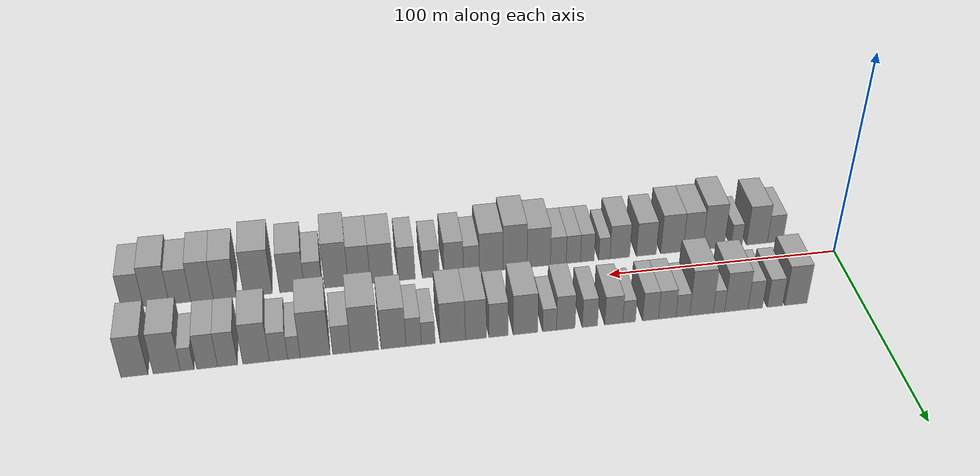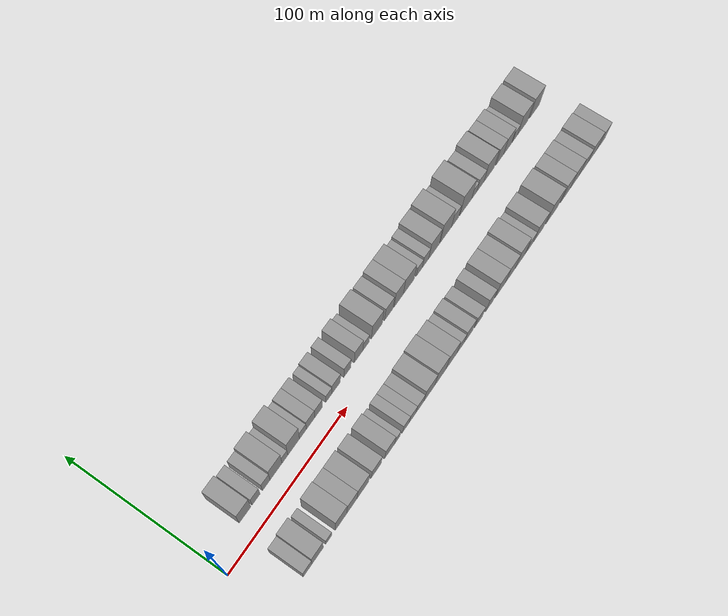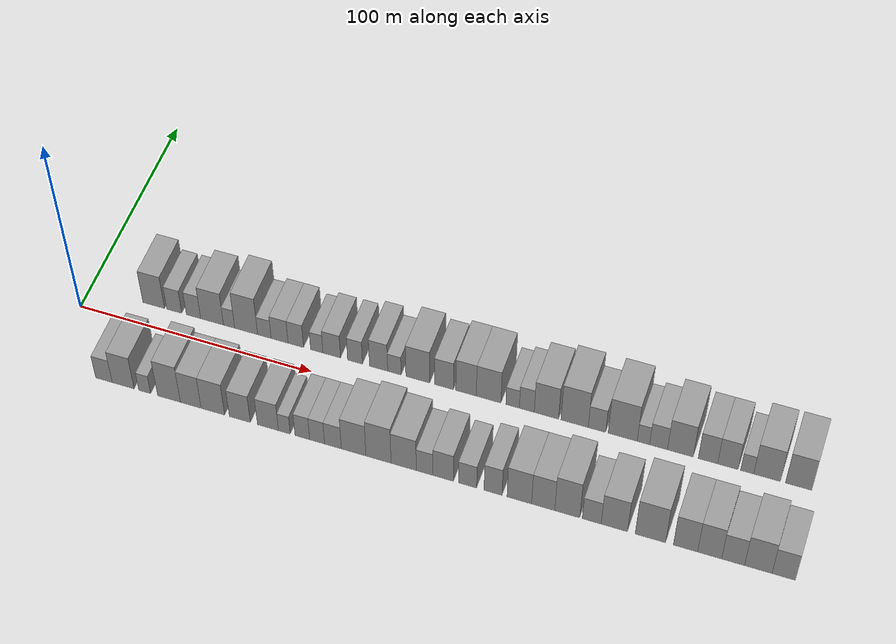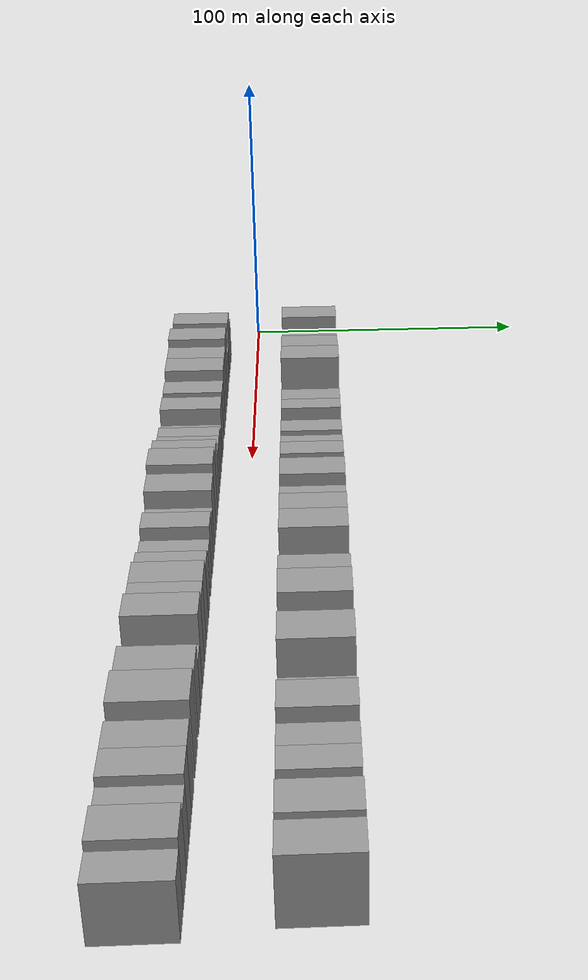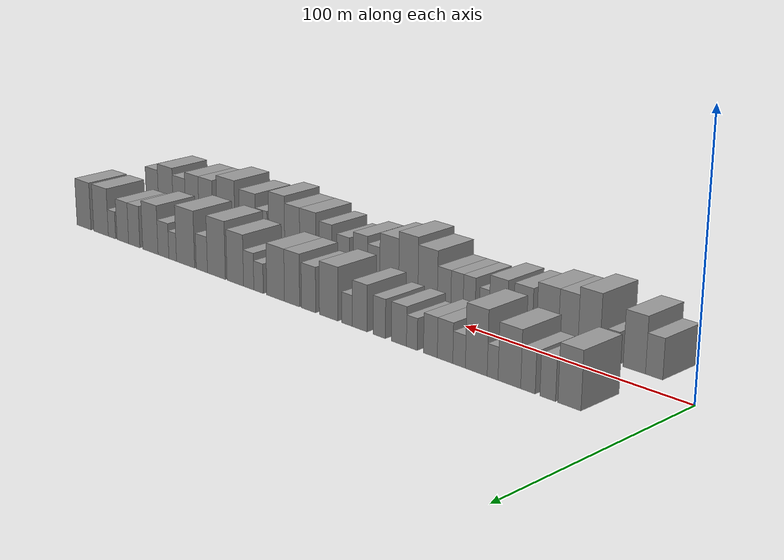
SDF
<sdf version="1.6">
 <world name="default">
  <scene>
   <sky><clouds><speed>12</speed></clouds></sky>
   <ambient>0.4 0.4 0.4 1</ambient>
   <background>0.7 0.7 0.7 1</background>
   <shadows>1</shadows>
  </scene>
  <gravity>0 0 -9.8066</gravity>
  <magnetic_field>6e-06 2.3e-05 -4.2e-05</magnetic_field>
  <physics default="0" name="default_physics" type="ode">
   <ode>
    <solver>
     <type>quick</type>
     <iters>10</iters>
     <sor>1.0</sor>
     <use_dynamic_moi_rescaling>0</use_dynamic_moi_rescaling>
    </solver>
    <constraints>
     <cfm>0</cfm>
     <erp>0.2</erp>
     <contact_max_correcting_vel>100</contact_max_correcting_vel>
     <contact_surface_layer>0.001</contact_surface_layer>
    </constraints>
   </ode>
   <max_step_size>0.004</max_step_size>
   <real_time_factor>1</real_time_factor>
   <real_time_update_rate>250</real_time_update_rate>
  </physics>
  <light name="sun" type="directional">
   <pose>0 0 10 0 0 0</pose>
   <diffuse>0.8 0.8 0.8 1</diffuse>
   <specular>0.2 0.2 0.2 1</specular>
   <attenuation>
    <range>1000</range>
    <constant>0.9</constant>
    <linear>0.01</linear>
    <quadratic>0.001</quadratic>
   </attenuation>
   <direction>-0.5 0.1 -0.9</direction>
  </light>
  <model name="building_1">
   <static>1</static>
   <pose>27.7572 20.0000 0 0.000000 0.000000 1.570796</pose>
   <link name="link">
    <pose>0 0 10.50 0 0 0</pose>
    <collision name="collision"><geometry><box><size>20.0000 9.5144 21.0000</size></box></geometry></collision>
    <visual name="visual">
     <cast_shadows>0</cast_shadows>
     <geometry><box><size>20.0000 9.5144 21.0000</size></box></geometry>
     <material>
      <script>
       <uri>model://grey_wall/materials/scripts</uri>
       <uri>model://grey_wall/materials/textures</uri>
       <name>vrc/grey_wall</name>
      </script>
     </material>
    </visual>
   </link>
  </model>
  <model name="building_2">
   <static>1</static>
   <pose>36.8097 20.0000 0 0.000000 0.000000 1.570796</pose>
   <link name="link">
    <pose>0 0 7.50 0 0 0</pose>
    <collision name="collision"><geometry><box><size>20.0000 6.5906 15.0000</size></box></geometry></collision>
    <visual name="visual">
     <cast_shadows>0</cast_shadows>
     <geometry><box><size>20.0000 6.5906 15.0000</size></box></geometry>
     <material>
      <script>
       <uri>model://grey_wall/materials/scripts</uri>
       <uri>model://grey_wall/materials/textures</uri>
       <name>vrc/grey_wall</name>
      </script>
     </material>
    </visual>
   </link>
  </model>
  <model name="building_3">
   <static>1</static>
   <pose>45.2321 20.0000 0 0.000000 0.000000 1.570796</pose>
   <link name="link">
    <pose>0 0 7.50 0 0 0</pose>
    <collision name="collision"><geometry><box><size>20.0000 6.2540 15.0000</size></box></geometry></collision>
    <visual name="visual">
     <cast_shadows>0</cast_shadows>
     <geometry><box><size>20.0000 6.2540 15.0000</size></box></geometry>
     <material>
      <script>
       <uri>model://grey_wall/materials/scripts</uri>
       <uri>model://grey_wall/materials/textures</uri>
       <name>vrc/grey_wall</name>
      </script>
     </material>
    </visual>
   </link>
  </model>
  <model name="building_4">
   <static>1</static>
   <pose>53.3386 20.0000 0 0.000000 0.000000 1.570796</pose>
   <link name="link">
    <pose>0 0 10.50 0 0 0</pose>
    <collision name="collision"><geometry><box><size>20.0000 9.9590 21.0000</size></box></geometry></collision>
    <visual name="visual">
     <cast_shadows>0</cast_shadows>
     <geometry><box><size>20.0000 9.9590 21.0000</size></box></geometry>
     <material>
      <script>
       <uri>model://grey_wall/materials/scripts</uri>
       <uri>model://grey_wall/materials/textures</uri>
       <name>vrc/grey_wall</name>
      </script>
     </material>
    </visual>
   </link>
  </model>
  <model name="building_5">
   <static>1</static>
   <pose>60.7465 20.0000 0 0.000000 0.000000 1.570796</pose>
   <link name="link">
    <pose>0 0 6.00 0 0 0</pose>
    <collision name="collision"><geometry><box><size>20.0000 4.8570 12.0000</size></box></geometry></collision>
    <visual name="visual">
     <cast_shadows>0</cast_shadows>
     <geometry><box><size>20.0000 4.8570 12.0000</size></box></geometry>
     <material>
      <script>
       <uri>model://grey_wall/materials/scripts</uri>
       <uri>model://grey_wall/materials/textures</uri>
       <name>vrc/grey_wall</name>
      </script>
     </material>
    </visual>
   </link>
  </model>
  <model name="building_6">
   <static>1</static>
   <pose>68.1376 20.0000 0 0.000000 0.000000 1.570796</pose>
   <link name="link">
    <pose>0 0 12.00 0 0 0</pose>
    <collision name="collision"><geometry><box><size>20.0000 9.9251 24.0000</size></box></geometry></collision>
    <visual name="visual">
     <cast_shadows>0</cast_shadows>
     <geometry><box><size>20.0000 9.9251 24.0000</size></box></geometry>
     <material>
      <script>
       <uri>model://grey_wall/materials/scripts</uri>
       <uri>model://grey_wall/materials/textures</uri>
       <name>vrc/grey_wall</name>
      </script>
     </material>
    </visual>
   </link>
  </model>
  <model name="building_7">
   <static>1</static>
   <pose>76.0149 20.0000 0 0.000000 0.000000 1.570796</pose>
   <link name="link">
    <pose>0 0 6.00 0 0 0</pose>
    <collision name="collision"><geometry><box><size>20.0000 5.8294 12.0000</size></box></geometry></collision>
    <visual name="visual">
     <cast_shadows>0</cast_shadows>
     <geometry><box><size>20.0000 5.8294 12.0000</size></box></geometry>
     <material>
      <script>
       <uri>model://grey_wall/materials/scripts</uri>
       <uri>model://grey_wall/materials/textures</uri>
       <name>vrc/grey_wall</name>
      </script>
     </material>
    </visual>
   </link>
  </model>
  <model name="building_8">
   <static>1</static>
   <pose>82.5758 20.0000 0 0.000000 0.000000 1.570796</pose>
   <link name="link">
    <pose>0 0 7.50 0 0 0</pose>
    <collision name="collision"><geometry><box><size>20.0000 7.2925 15.0000</size></box></geometry></collision>
    <visual name="visual">
     <cast_shadows>0</cast_shadows>
     <geometry><box><size>20.0000 7.2925 15.0000</size></box></geometry>
     <material>
      <script>
       <uri>model://grey_wall/materials/scripts</uri>
       <uri>model://grey_wall/materials/textures</uri>
       <name>vrc/grey_wall</name>
      </script>
     </material>
    </visual>
   </link>
  </model>
  <model name="building_9">
   <static>1</static>
   <pose>89.5353 20.0000 0 0.000000 0.000000 1.570796</pose>
   <link name="link">
    <pose>0 0 7.50 0 0 0</pose>
    <collision name="collision"><geometry><box><size>20.0000 6.6265 15.0000</size></box></geometry></collision>
    <visual name="visual">
     <cast_shadows>0</cast_shadows>
     <geometry><box><size>20.0000 6.6265 15.0000</size></box></geometry>
     <material>
      <script>
       <uri>model://grey_wall/materials/scripts</uri>
       <uri>model://grey_wall/materials/textures</uri>
       <name>vrc/grey_wall</name>
      </script>
     </material>
    </visual>
   </link>
  </model>
  <model name="building_10">
   <static>1</static>
   <pose>98.4886 20.0000 0 0.000000 0.000000 1.570796</pose>
   <link name="link">
    <pose>0 0 6.00 0 0 0</pose>
    <collision name="collision"><geometry><box><size>20.0000 5.2801 12.0000</size></box></geometry></collision>
    <visual name="visual">
     <cast_shadows>0</cast_shadows>
     <geometry><box><size>20.0000 5.2801 12.0000</size></box></geometry>
     <material>
      <script>
       <uri>model://grey_wall/materials/scripts</uri>
       <uri>model://grey_wall/materials/textures</uri>
       <name>vrc/grey_wall</name>
      </script>
     </material>
    </visual>
   </link>
  </model>
  <model name="building_11">
   <static>1</static>
   <pose>104.8770 20.0000 0 0.000000 0.000000 1.570796</pose>
   <link name="link">
    <pose>0 0 7.50 0 0 0</pose>
    <collision name="collision"><geometry><box><size>20.0000 7.4967 15.0000</size></box></geometry></collision>
    <visual name="visual">
     <cast_shadows>0</cast_shadows>
     <geometry><box><size>20.0000 7.4967 15.0000</size></box></geometry>
     <material>
      <script>
       <uri>model://grey_wall/materials/scripts</uri>
       <uri>model://grey_wall/materials/textures</uri>
       <name>vrc/grey_wall</name>
      </script>
     </material>
    </visual>
   </link>
  </model>
  <model name="building_12">
   <static>1</static>
   <pose>114.7740 20.0000 0 0.000000 0.000000 1.570796</pose>
   <link name="link">
    <pose>0 0 7.50 0 0 0</pose>
    <collision name="collision"><geometry><box><size>20.0000 6.2972 15.0000</size></box></geometry></collision>
    <visual name="visual">
     <cast_shadows>0</cast_shadows>
     <geometry><box><size>20.0000 6.2972 15.0000</size></box></geometry>
     <material>
      <script>
       <uri>model://grey_wall/materials/scripts</uri>
       <uri>model://grey_wall/materials/textures</uri>
       <name>vrc/grey_wall</name>
      </script>
     </material>
    </visual>
   </link>
  </model>
  <model name="building_13">
   <static>1</static>
   <pose>124.7443 20.0000 0 0.000000 0.000000 1.570796</pose>
   <link name="link">
    <pose>0 0 9.00 0 0 0</pose>
    <collision name="collision"><geometry><box><size>20.0000 7.6435 18.0000</size></box></geometry></collision>
    <visual name="visual">
     <cast_shadows>0</cast_shadows>
     <geometry><box><size>20.0000 7.6435 18.0000</size></box></geometry>
     <material>
      <script>
       <uri>model://grey_wall/materials/scripts</uri>
       <uri>model://grey_wall/materials/textures</uri>
       <name>vrc/grey_wall</name>
      </script>
     </material>
    </visual>
   </link>
  </model>
  <model name="building_14">
   <static>1</static>
   <pose>131.4072 20.0000 0 0.000000 0.000000 1.570796</pose>
   <link name="link">
    <pose>0 0 6.00 0 0 0</pose>
    <collision name="collision"><geometry><box><size>20.0000 5.6821 12.0000</size></box></geometry></collision>
    <visual name="visual">
     <cast_shadows>0</cast_shadows>
     <geometry><box><size>20.0000 5.6821 12.0000</size></box></geometry>
     <material>
      <script>
       <uri>model://grey_wall/materials/scripts</uri>
       <uri>model://grey_wall/materials/textures</uri>
       <name>vrc/grey_wall</name>
      </script>
     </material>
    </visual>
   </link>
  </model>
  <model name="building_15">
   <static>1</static>
   <pose>141.2418 20.0000 0 0.000000 0.000000 1.570796</pose>
   <link name="link">
    <pose>0 0 10.50 0 0 0</pose>
    <collision name="collision"><geometry><box><size>20.0000 9.9872 21.0000</size></box></geometry></collision>
    <visual name="visual">
     <cast_shadows>0</cast_shadows>
     <geometry><box><size>20.0000 9.9872 21.0000</size></box></geometry>
     <material>
      <script>
       <uri>model://grey_wall/materials/scripts</uri>
       <uri>model://grey_wall/materials/textures</uri>
       <name>vrc/grey_wall</name>
      </script>
     </material>
    </visual>
   </link>
  </model>
  <model name="building_16">
   <static>1</static>
   <pose>152.1717 20.0000 0 0.000000 0.000000 1.570796</pose>
   <link name="link">
    <pose>0 0 9.00 0 0 0</pose>
    <collision name="collision"><geometry><box><size>20.0000 7.8726 18.0000</size></box></geometry></collision>
    <visual name="visual">
     <cast_shadows>0</cast_shadows>
     <geometry><box><size>20.0000 7.8726 18.0000</size></box></geometry>
     <material>
      <script>
       <uri>model://grey_wall/materials/scripts</uri>
       <uri>model://grey_wall/materials/textures</uri>
       <name>vrc/grey_wall</name>
      </script>
     </material>
    </visual>
   </link>
  </model>
  <model name="building_17">
   <static>1</static>
   <pose>161.3731 20.0000 0 0.000000 0.000000 1.570796</pose>
   <link name="link">
    <pose>0 0 10.50 0 0 0</pose>
    <collision name="collision"><geometry><box><size>20.0000 8.5301 21.0000</size></box></geometry></collision>
    <visual name="visual">
     <cast_shadows>0</cast_shadows>
     <geometry><box><size>20.0000 8.5301 21.0000</size></box></geometry>
     <material>
      <script>
       <uri>model://grey_wall/materials/scripts</uri>
       <uri>model://grey_wall/materials/textures</uri>
       <name>vrc/grey_wall</name>
      </script>
     </material>
    </visual>
   </link>
  </model>
  <model name="building_18">
   <static>1</static>
   <pose>170.7369 20.0000 0 0.000000 0.000000 1.570796</pose>
   <link name="link">
    <pose>0 0 10.50 0 0 0</pose>
    <collision name="collision"><geometry><box><size>20.0000 10.1977 21.0000</size></box></geometry></collision>
    <visual name="visual">
     <cast_shadows>0</cast_shadows>
     <geometry><box><size>20.0000 10.1977 21.0000</size></box></geometry>
     <material>
      <script>
       <uri>model://grey_wall/materials/scripts</uri>
       <uri>model://grey_wall/materials/textures</uri>
       <name>vrc/grey_wall</name>
      </script>
     </material>
    </visual>
   </link>
  </model>
  <model name="building_19">
   <static>1</static>
   <pose>180.6110 20.0000 0 0.000000 0.000000 1.570796</pose>
   <link name="link">
    <pose>0 0 6.00 0 0 0</pose>
    <collision name="collision"><geometry><box><size>20.0000 5.5505 12.0000</size></box></geometry></collision>
    <visual name="visual">
     <cast_shadows>0</cast_shadows>
     <geometry><box><size>20.0000 5.5505 12.0000</size></box></geometry>
     <material>
      <script>
       <uri>model://grey_wall/materials/scripts</uri>
       <uri>model://grey_wall/materials/textures</uri>
       <name>vrc/grey_wall</name>
      </script>
     </material>
    </visual>
   </link>
  </model>
  <model name="building_20">
   <static>1</static>
   <pose>186.4364 20.0000 0 0.000000 0.000000 1.570796</pose>
   <link name="link">
    <pose>0 0 7.50 0 0 0</pose>
    <collision name="collision"><geometry><box><size>20.0000 6.1003 15.0000</size></box></geometry></collision>
    <visual name="visual">
     <cast_shadows>0</cast_shadows>
     <geometry><box><size>20.0000 6.1003 15.0000</size></box></geometry>
     <material>
      <script>
       <uri>model://grey_wall/materials/scripts</uri>
       <uri>model://grey_wall/materials/textures</uri>
       <name>vrc/grey_wall</name>
      </script>
     </material>
    </visual>
   </link>
  </model>
  <model name="building_21">
   <static>1</static>
   <pose>194.4654 20.0000 0 0.000000 0.000000 1.570796</pose>
   <link name="link">
    <pose>0 0 10.50 0 0 0</pose>
    <collision name="collision"><geometry><box><size>20.0000 9.9576 21.0000</size></box></geometry></collision>
    <visual name="visual">
     <cast_shadows>0</cast_shadows>
     <geometry><box><size>20.0000 9.9576 21.0000</size></box></geometry>
     <material>
      <script>
       <uri>model://grey_wall/materials/scripts</uri>
       <uri>model://grey_wall/materials/textures</uri>
       <name>vrc/grey_wall</name>
      </script>
     </material>
    </visual>
   </link>
  </model>
  <model name="building_22">
   <static>1</static>
   <pose>205.9872 20.0000 0 0.000000 0.000000 1.570796</pose>
   <link name="link">
    <pose>0 0 12.00 0 0 0</pose>
    <collision name="collision"><geometry><box><size>20.0000 11.0861 24.0000</size></box></geometry></collision>
    <visual name="visual">
     <cast_shadows>0</cast_shadows>
     <geometry><box><size>20.0000 11.0861 24.0000</size></box></geometry>
     <material>
      <script>
       <uri>model://grey_wall/materials/scripts</uri>
       <uri>model://grey_wall/materials/textures</uri>
       <name>vrc/grey_wall</name>
      </script>
     </material>
    </visual>
   </link>
  </model>
  <model name="building_23">
   <static>1</static>
   <pose>215.0701 20.0000 0 0.000000 0.000000 1.570796</pose>
   <link name="link">
    <pose>0 0 7.50 0 0 0</pose>
    <collision name="collision"><geometry><box><size>20.0000 7.0795 15.0000</size></box></geometry></collision>
    <visual name="visual">
     <cast_shadows>0</cast_shadows>
     <geometry><box><size>20.0000 7.0795 15.0000</size></box></geometry>
     <material>
      <script>
       <uri>model://grey_wall/materials/scripts</uri>
       <uri>model://grey_wall/materials/textures</uri>
       <name>vrc/grey_wall</name>
      </script>
     </material>
    </visual>
   </link>
  </model>
  <model name="building_24">
   <static>1</static>
   <pose>225.4711 20.0000 0 0.000000 0.000000 1.570796</pose>
   <link name="link">
    <pose>0 0 12.00 0 0 0</pose>
    <collision name="collision"><geometry><box><size>20.0000 11.7225 24.0000</size></box></geometry></collision>
    <visual name="visual">
     <cast_shadows>0</cast_shadows>
     <geometry><box><size>20.0000 11.7225 24.0000</size></box></geometry>
     <material>
      <script>
       <uri>model://grey_wall/materials/scripts</uri>
       <uri>model://grey_wall/materials/textures</uri>
       <name>vrc/grey_wall</name>
      </script>
     </material>
    </visual>
   </link>
  </model>
  <model name="building_25">
   <static>1</static>
   <pose>233.8151 20.0000 0 0.000000 0.000000 1.570796</pose>
   <link name="link">
    <pose>0 0 6.00 0 0 0</pose>
    <collision name="collision"><geometry><box><size>20.0000 4.9655 12.0000</size></box></geometry></collision>
    <visual name="visual">
     <cast_shadows>0</cast_shadows>
     <geometry><box><size>20.0000 4.9655 12.0000</size></box></geometry>
     <material>
      <script>
       <uri>model://grey_wall/materials/scripts</uri>
       <uri>model://grey_wall/materials/textures</uri>
       <name>vrc/grey_wall</name>
      </script>
     </material>
    </visual>
   </link>
  </model>
  <model name="building_26">
   <static>1</static>
   <pose>239.8933 20.0000 0 0.000000 0.000000 1.570796</pose>
   <link name="link">
    <pose>0 0 7.50 0 0 0</pose>
    <collision name="collision"><geometry><box><size>20.0000 7.1910 15.0000</size></box></geometry></collision>
    <visual name="visual">
     <cast_shadows>0</cast_shadows>
     <geometry><box><size>20.0000 7.1910 15.0000</size></box></geometry>
     <material>
      <script>
       <uri>model://grey_wall/materials/scripts</uri>
       <uri>model://grey_wall/materials/textures</uri>
       <name>vrc/grey_wall</name>
      </script>
     </material>
    </visual>
   </link>
  </model>
  <model name="building_27">
   <static>1</static>
   <pose>248.6261 20.0000 0 0.000000 0.000000 1.570796</pose>
   <link name="link">
    <pose>0 0 10.50 0 0 0</pose>
    <collision name="collision"><geometry><box><size>20.0000 10.2746 21.0000</size></box></geometry></collision>
    <visual name="visual">
     <cast_shadows>0</cast_shadows>
     <geometry><box><size>20.0000 10.2746 21.0000</size></box></geometry>
     <material>
      <script>
       <uri>model://grey_wall/materials/scripts</uri>
       <uri>model://grey_wall/materials/textures</uri>
       <name>vrc/grey_wall</name>
      </script>
     </material>
    </visual>
   </link>
  </model>
  <model name="building_28">
   <static>1</static>
   <pose>259.6235 20.0000 0 0.000000 0.000000 1.570796</pose>
   <link name="link">
    <pose>0 0 9.00 0 0 0</pose>
    <collision name="collision"><geometry><box><size>20.0000 7.7201 18.0000</size></box></geometry></collision>
    <visual name="visual">
     <cast_shadows>0</cast_shadows>
     <geometry><box><size>20.0000 7.7201 18.0000</size></box></geometry>
     <material>
      <script>
       <uri>model://grey_wall/materials/scripts</uri>
       <uri>model://grey_wall/materials/textures</uri>
       <name>vrc/grey_wall</name>
      </script>
     </material>
    </visual>
   </link>
  </model>
  <model name="building_29">
   <static>1</static>
   <pose>267.5244 20.0000 0 0.000000 0.000000 1.570796</pose>
   <link name="link">
    <pose>0 0 9.00 0 0 0</pose>
    <collision name="collision"><geometry><box><size>20.0000 8.0817 18.0000</size></box></geometry></collision>
    <visual name="visual">
     <cast_shadows>0</cast_shadows>
     <geometry><box><size>20.0000 8.0817 18.0000</size></box></geometry>
     <material>
      <script>
       <uri>model://grey_wall/materials/scripts</uri>
       <uri>model://grey_wall/materials/textures</uri>
       <name>vrc/grey_wall</name>
      </script>
     </material>
    </visual>
   </link>
  </model>
  <model name="building_30">
   <static>1</static>
   <pose>275.1618 20.0000 0 0.000000 0.000000 1.570796</pose>
   <link name="link">
    <pose>0 0 6.00 0 0 0</pose>
    <collision name="collision"><geometry><box><size>20.0000 5.1931 12.0000</size></box></geometry></collision>
    <visual name="visual">
     <cast_shadows>0</cast_shadows>
     <geometry><box><size>20.0000 5.1931 12.0000</size></box></geometry>
     <material>
      <script>
       <uri>model://grey_wall/materials/scripts</uri>
       <uri>model://grey_wall/materials/textures</uri>
       <name>vrc/grey_wall</name>
      </script>
     </material>
    </visual>
   </link>
  </model>
  <model name="building_31">
   <static>1</static>
   <pose>282.9923 20.0000 0 0.000000 0.000000 1.570796</pose>
   <link name="link">
    <pose>0 0 10.50 0 0 0</pose>
    <collision name="collision"><geometry><box><size>20.0000 10.4677 21.0000</size></box></geometry></collision>
    <visual name="visual">
     <cast_shadows>0</cast_shadows>
     <geometry><box><size>20.0000 10.4677 21.0000</size></box></geometry>
     <material>
      <script>
       <uri>model://grey_wall/materials/scripts</uri>
       <uri>model://grey_wall/materials/textures</uri>
       <name>vrc/grey_wall</name>
      </script>
     </material>
    </visual>
   </link>
  </model>
  <model name="building_32">
   <static>1</static>
   <pose>295.3724 20.0000 0 0.000000 0.000000 1.570796</pose>
   <link name="link">
    <pose>0 0 10.50 0 0 0</pose>
    <collision name="collision"><geometry><box><size>20.0000 10.2925 21.0000</size></box></geometry></collision>
    <visual name="visual">
     <cast_shadows>0</cast_shadows>
     <geometry><box><size>20.0000 10.2925 21.0000</size></box></geometry>
     <material>
      <script>
       <uri>model://grey_wall/materials/scripts</uri>
       <uri>model://grey_wall/materials/textures</uri>
       <name>vrc/grey_wall</name>
      </script>
     </material>
    </visual>
   </link>
  </model>
  <model name="building_33">
   <static>1</static>
   <pose>23.5636 -20.0000 0 0.000000 0.000000 1.570796</pose>
   <link name="link">
    <pose>0 0 7.50 0 0 0</pose>
    <collision name="collision"><geometry><box><size>20.0000 7.1272 15.0000</size></box></geometry></collision>
    <visual name="visual">
     <cast_shadows>0</cast_shadows>
     <geometry><box><size>20.0000 7.1272 15.0000</size></box></geometry>
     <material>
      <script>
       <uri>model://grey_wall/materials/scripts</uri>
       <uri>model://grey_wall/materials/textures</uri>
       <name>vrc/grey_wall</name>
      </script>
     </material>
    </visual>
   </link>
  </model>
  <model name="building_34">
   <static>1</static>
   <pose>31.8367 -20.0000 0 0.000000 0.000000 1.570796</pose>
   <link name="link">
    <pose>0 0 10.50 0 0 0</pose>
    <collision name="collision"><geometry><box><size>20.0000 9.4190 21.0000</size></box></geometry></collision>
    <visual name="visual">
     <cast_shadows>0</cast_shadows>
     <geometry><box><size>20.0000 9.4190 21.0000</size></box></geometry>
     <material>
      <script>
       <uri>model://grey_wall/materials/scripts</uri>
       <uri>model://grey_wall/materials/textures</uri>
       <name>vrc/grey_wall</name>
      </script>
     </material>
    </visual>
   </link>
  </model>
  <model name="building_35">
   <static>1</static>
   <pose>41.0851 -20.0000 0 0.000000 0.000000 1.570796</pose>
   <link name="link">
    <pose>0 0 6.00 0 0 0</pose>
    <collision name="collision"><geometry><box><size>20.0000 5.0776 12.0000</size></box></geometry></collision>
    <visual name="visual">
     <cast_shadows>0</cast_shadows>
     <geometry><box><size>20.0000 5.0776 12.0000</size></box></geometry>
     <material>
      <script>
       <uri>model://grey_wall/materials/scripts</uri>
       <uri>model://grey_wall/materials/textures</uri>
       <name>vrc/grey_wall</name>
      </script>
     </material>
    </visual>
   </link>
  </model>
  <model name="building_36">
   <static>1</static>
   <pose>51.4706 -20.0000 0 0.000000 0.000000 1.570796</pose>
   <link name="link">
    <pose>0 0 12.00 0 0 0</pose>
    <collision name="collision"><geometry><box><size>20.0000 9.6934 24.0000</size></box></geometry></collision>
    <visual name="visual">
     <cast_shadows>0</cast_shadows>
     <geometry><box><size>20.0000 9.6934 24.0000</size></box></geometry>
     <material>
      <script>
       <uri>model://grey_wall/materials/scripts</uri>
       <uri>model://grey_wall/materials/textures</uri>
       <name>vrc/grey_wall</name>
      </script>
     </material>
    </visual>
   </link>
  </model>
  <model name="building_37">
   <static>1</static>
   <pose>60.7078 -20.0000 0 0.000000 0.000000 1.570796</pose>
   <link name="link">
    <pose>0 0 10.50 0 0 0</pose>
    <collision name="collision"><geometry><box><size>20.0000 8.7810 21.0000</size></box></geometry></collision>
    <visual name="visual">
     <cast_shadows>0</cast_shadows>
     <geometry><box><size>20.0000 8.7810 21.0000</size></box></geometry>
     <material>
      <script>
       <uri>model://grey_wall/materials/scripts</uri>
       <uri>model://grey_wall/materials/textures</uri>
       <name>vrc/grey_wall</name>
      </script>
     </material>
    </visual>
   </link>
  </model>
  <model name="building_38">
   <static>1</static>
   <pose>70.0884 -20.0000 0 0.000000 0.000000 1.570796</pose>
   <link name="link">
    <pose>0 0 10.50 0 0 0</pose>
    <collision name="collision"><geometry><box><size>20.0000 9.9802 21.0000</size></box></geometry></collision>
    <visual name="visual">
     <cast_shadows>0</cast_shadows>
     <geometry><box><size>20.0000 9.9802 21.0000</size></box></geometry>
     <material>
      <script>
       <uri>model://grey_wall/materials/scripts</uri>
       <uri>model://grey_wall/materials/textures</uri>
       <name>vrc/grey_wall</name>
      </script>
     </material>
    </visual>
   </link>
  </model>
  <model name="building_39">
   <static>1</static>
   <pose>81.4839 -20.0000 0 0.000000 0.000000 1.570796</pose>
   <link name="link">
    <pose>0 0 9.00 0 0 0</pose>
    <collision name="collision"><geometry><box><size>20.0000 8.8109 18.0000</size></box></geometry></collision>
    <visual name="visual">
     <cast_shadows>0</cast_shadows>
     <geometry><box><size>20.0000 8.8109 18.0000</size></box></geometry>
     <material>
      <script>
       <uri>model://grey_wall/materials/scripts</uri>
       <uri>model://grey_wall/materials/textures</uri>
       <name>vrc/grey_wall</name>
      </script>
     </material>
    </visual>
   </link>
  </model>
  <model name="building_40">
   <static>1</static>
   <pose>93.2661 -20.0000 0 0.000000 0.000000 1.570796</pose>
   <link name="link">
    <pose>0 0 9.00 0 0 0</pose>
    <collision name="collision"><geometry><box><size>20.0000 8.7536 18.0000</size></box></geometry></collision>
    <visual name="visual">
     <cast_shadows>0</cast_shadows>
     <geometry><box><size>20.0000 8.7536 18.0000</size></box></geometry>
     <material>
      <script>
       <uri>model://grey_wall/materials/scripts</uri>
       <uri>model://grey_wall/materials/textures</uri>
       <name>vrc/grey_wall</name>
      </script>
     </material>
    </visual>
   </link>
  </model>
  <model name="building_41">
   <static>1</static>
   <pose>100.0994 -20.0000 0 0.000000 0.000000 1.570796</pose>
   <link name="link">
    <pose>0 0 6.00 0 0 0</pose>
    <collision name="collision"><geometry><box><size>20.0000 4.9129 12.0000</size></box></geometry></collision>
    <visual name="visual">
     <cast_shadows>0</cast_shadows>
     <geometry><box><size>20.0000 4.9129 12.0000</size></box></geometry>
     <material>
      <script>
       <uri>model://grey_wall/materials/scripts</uri>
       <uri>model://grey_wall/materials/textures</uri>
       <name>vrc/grey_wall</name>
      </script>
     </material>
    </visual>
   </link>
  </model>
  <model name="building_42">
   <static>1</static>
   <pose>107.5712 -20.0000 0 0.000000 0.000000 1.570796</pose>
   <link name="link">
    <pose>0 0 7.50 0 0 0</pose>
    <collision name="collision"><geometry><box><size>20.0000 6.0307 15.0000</size></box></geometry></collision>
    <visual name="visual">
     <cast_shadows>0</cast_shadows>
     <geometry><box><size>20.0000 6.0307 15.0000</size></box></geometry>
     <material>
      <script>
       <uri>model://grey_wall/materials/scripts</uri>
       <uri>model://grey_wall/materials/textures</uri>
       <name>vrc/grey_wall</name>
      </script>
     </material>
    </visual>
   </link>
  </model>
  <model name="building_43">
   <static>1</static>
   <pose>113.6912 -20.0000 0 0.000000 0.000000 1.570796</pose>
   <link name="link">
    <pose>0 0 7.50 0 0 0</pose>
    <collision name="collision"><geometry><box><size>20.0000 6.2094 15.0000</size></box></geometry></collision>
    <visual name="visual">
     <cast_shadows>0</cast_shadows>
     <geometry><box><size>20.0000 6.2094 15.0000</size></box></geometry>
     <material>
      <script>
       <uri>model://grey_wall/materials/scripts</uri>
       <uri>model://grey_wall/materials/textures</uri>
       <name>vrc/grey_wall</name>
      </script>
     </material>
    </visual>
   </link>
  </model>
  <model name="building_44">
   <static>1</static>
   <pose>120.2545 -20.0000 0 0.000000 0.000000 1.570796</pose>
   <link name="link">
    <pose>0 0 7.50 0 0 0</pose>
    <collision name="collision"><geometry><box><size>20.0000 6.9172 15.0000</size></box></geometry></collision>
    <visual name="visual">
     <cast_shadows>0</cast_shadows>
     <geometry><box><size>20.0000 6.9172 15.0000</size></box></geometry>
     <material>
      <script>
       <uri>model://grey_wall/materials/scripts</uri>
       <uri>model://grey_wall/materials/textures</uri>
       <name>vrc/grey_wall</name>
      </script>
     </material>
    </visual>
   </link>
  </model>
  <model name="building_45">
   <static>1</static>
   <pose>128.7807 -20.0000 0 0.000000 0.000000 1.570796</pose>
   <link name="link">
    <pose>0 0 10.50 0 0 0</pose>
    <collision name="collision"><geometry><box><size>20.0000 10.1353 21.0000</size></box></geometry></collision>
    <visual name="visual">
     <cast_shadows>0</cast_shadows>
     <geometry><box><size>20.0000 10.1353 21.0000</size></box></geometry>
     <material>
      <script>
       <uri>model://grey_wall/materials/scripts</uri>
       <uri>model://grey_wall/materials/textures</uri>
       <name>vrc/grey_wall</name>
      </script>
     </material>
    </visual>
   </link>
  </model>
  <model name="building_46">
   <static>1</static>
   <pose>139.0061 -20.0000 0 0.000000 0.000000 1.570796</pose>
   <link name="link">
    <pose>0 0 12.00 0 0 0</pose>
    <collision name="collision"><geometry><box><size>20.0000 10.3154 24.0000</size></box></geometry></collision>
    <visual name="visual">
     <cast_shadows>0</cast_shadows>
     <geometry><box><size>20.0000 10.3154 24.0000</size></box></geometry>
     <material>
      <script>
       <uri>model://grey_wall/materials/scripts</uri>
       <uri>model://grey_wall/materials/textures</uri>
       <name>vrc/grey_wall</name>
      </script>
     </material>
    </visual>
   </link>
  </model>
  <model name="building_47">
   <static>1</static>
   <pose>149.3023 -20.0000 0 0.000000 0.000000 1.570796</pose>
   <link name="link">
    <pose>0 0 10.50 0 0 0</pose>
    <collision name="collision"><geometry><box><size>20.0000 10.2770 21.0000</size></box></geometry></collision>
    <visual name="visual">
     <cast_shadows>0</cast_shadows>
     <geometry><box><size>20.0000 10.2770 21.0000</size></box></geometry>
     <material>
      <script>
       <uri>model://grey_wall/materials/scripts</uri>
       <uri>model://grey_wall/materials/textures</uri>
       <name>vrc/grey_wall</name>
      </script>
     </material>
    </visual>
   </link>
  </model>
  <model name="building_48">
   <static>1</static>
   <pose>157.8474 -20.0000 0 0.000000 0.000000 1.570796</pose>
   <link name="link">
    <pose>0 0 7.50 0 0 0</pose>
    <collision name="collision"><geometry><box><size>20.0000 6.8130 15.0000</size></box></geometry></collision>
    <visual name="visual">
     <cast_shadows>0</cast_shadows>
     <geometry><box><size>20.0000 6.8130 15.0000</size></box></geometry>
     <material>
      <script>
       <uri>model://grey_wall/materials/scripts</uri>
       <uri>model://grey_wall/materials/textures</uri>
       <name>vrc/grey_wall</name>
      </script>
     </material>
    </visual>
   </link>
  </model>
  <model name="building_49">
   <static>1</static>
   <pose>165.3828 -20.0000 0 0.000000 0.000000 1.570796</pose>
   <link name="link">
    <pose>0 0 9.00 0 0 0</pose>
    <collision name="collision"><geometry><box><size>20.0000 8.2578 18.0000</size></box></geometry></collision>
    <visual name="visual">
     <cast_shadows>0</cast_shadows>
     <geometry><box><size>20.0000 8.2578 18.0000</size></box></geometry>
     <material>
      <script>
       <uri>model://grey_wall/materials/scripts</uri>
       <uri>model://grey_wall/materials/textures</uri>
       <name>vrc/grey_wall</name>
      </script>
     </material>
    </visual>
   </link>
  </model>
  <model name="building_50">
   <static>1</static>
   <pose>175.1777 -20.0000 0 0.000000 0.000000 1.570796</pose>
   <link name="link">
    <pose>0 0 7.50 0 0 0</pose>
    <collision name="collision"><geometry><box><size>20.0000 7.3320 15.0000</size></box></geometry></collision>
    <visual name="visual">
     <cast_shadows>0</cast_shadows>
     <geometry><box><size>20.0000 7.3320 15.0000</size></box></geometry>
     <material>
      <script>
       <uri>model://grey_wall/materials/scripts</uri>
       <uri>model://grey_wall/materials/textures</uri>
       <name>vrc/grey_wall</name>
      </script>
     </material>
    </visual>
   </link>
  </model>
  <model name="building_51">
   <static>1</static>
   <pose>185.4542 -20.0000 0 0.000000 0.000000 1.570796</pose>
   <link name="link">
    <pose>0 0 9.00 0 0 0</pose>
    <collision name="collision"><geometry><box><size>20.0000 7.2210 18.0000</size></box></geometry></collision>
    <visual name="visual">
     <cast_shadows>0</cast_shadows>
     <geometry><box><size>20.0000 7.2210 18.0000</size></box></geometry>
     <material>
      <script>
       <uri>model://grey_wall/materials/scripts</uri>
       <uri>model://grey_wall/materials/textures</uri>
       <name>vrc/grey_wall</name>
      </script>
     </material>
    </visual>
   </link>
  </model>
  <model name="building_52">
   <static>1</static>
   <pose>195.9559 -20.0000 0 0.000000 0.000000 1.570796</pose>
   <link name="link">
    <pose>0 0 10.50 0 0 0</pose>
    <collision name="collision"><geometry><box><size>20.0000 9.7824 21.0000</size></box></geometry></collision>
    <visual name="visual">
     <cast_shadows>0</cast_shadows>
     <geometry><box><size>20.0000 9.7824 21.0000</size></box></geometry>
     <material>
      <script>
       <uri>model://grey_wall/materials/scripts</uri>
       <uri>model://grey_wall/materials/textures</uri>
       <name>vrc/grey_wall</name>
      </script>
     </material>
    </visual>
   </link>
  </model>
  <model name="building_53">
   <static>1</static>
   <pose>205.4444 -20.0000 0 0.000000 0.000000 1.570796</pose>
   <link name="link">
    <pose>0 0 10.50 0 0 0</pose>
    <collision name="collision"><geometry><box><size>20.0000 9.1945 21.0000</size></box></geometry></collision>
    <visual name="visual">
     <cast_shadows>0</cast_shadows>
     <geometry><box><size>20.0000 9.1945 21.0000</size></box></geometry>
     <material>
      <script>
       <uri>model://grey_wall/materials/scripts</uri>
       <uri>model://grey_wall/materials/textures</uri>
       <name>vrc/grey_wall</name>
      </script>
     </material>
    </visual>
   </link>
  </model>
  <model name="building_54">
   <static>1</static>
   <pose>214.9911 -20.0000 0 0.000000 0.000000 1.570796</pose>
   <link name="link">
    <pose>0 0 12.00 0 0 0</pose>
    <collision name="collision"><geometry><box><size>20.0000 9.8989 24.0000</size></box></geometry></collision>
    <visual name="visual">
     <cast_shadows>0</cast_shadows>
     <geometry><box><size>20.0000 9.8989 24.0000</size></box></geometry>
     <material>
      <script>
       <uri>model://grey_wall/materials/scripts</uri>
       <uri>model://grey_wall/materials/textures</uri>
       <name>vrc/grey_wall</name>
      </script>
     </material>
    </visual>
   </link>
  </model>
  <model name="building_55">
   <static>1</static>
   <pose>224.6462 -20.0000 0 0.000000 0.000000 1.570796</pose>
   <link name="link">
    <pose>0 0 7.50 0 0 0</pose>
    <collision name="collision"><geometry><box><size>20.0000 7.4113 15.0000</size></box></geometry></collision>
    <visual name="visual">
     <cast_shadows>0</cast_shadows>
     <geometry><box><size>20.0000 7.4113 15.0000</size></box></geometry>
     <material>
      <script>
       <uri>model://grey_wall/materials/scripts</uri>
       <uri>model://grey_wall/materials/textures</uri>
       <name>vrc/grey_wall</name>
      </script>
     </material>
    </visual>
   </link>
  </model>
  <model name="building_56">
   <static>1</static>
   <pose>233.5383 -20.0000 0 0.000000 0.000000 1.570796</pose>
   <link name="link">
    <pose>0 0 10.50 0 0 0</pose>
    <collision name="collision"><geometry><box><size>20.0000 10.3728 21.0000</size></box></geometry></collision>
    <visual name="visual">
     <cast_shadows>0</cast_shadows>
     <geometry><box><size>20.0000 10.3728 21.0000</size></box></geometry>
     <material>
      <script>
       <uri>model://grey_wall/materials/scripts</uri>
       <uri>model://grey_wall/materials/textures</uri>
       <name>vrc/grey_wall</name>
      </script>
     </material>
    </visual>
   </link>
  </model>
  <model name="building_57">
   <static>1</static>
   <pose>247.6540 -20.0000 0 0.000000 0.000000 1.570796</pose>
   <link name="link">
    <pose>0 0 12.00 0 0 0</pose>
    <collision name="collision"><geometry><box><size>20.0000 11.8586 24.0000</size></box></geometry></collision>
    <visual name="visual">
     <cast_shadows>0</cast_shadows>
     <geometry><box><size>20.0000 11.8586 24.0000</size></box></geometry>
     <material>
      <script>
       <uri>model://grey_wall/materials/scripts</uri>
       <uri>model://grey_wall/materials/textures</uri>
       <name>vrc/grey_wall</name>
      </script>
     </material>
    </visual>
   </link>
  </model>
  <model name="building_58">
   <static>1</static>
   <pose>261.2621 -20.0000 0 0.000000 0.000000 1.570796</pose>
   <link name="link">
    <pose>0 0 10.50 0 0 0</pose>
    <collision name="collision"><geometry><box><size>20.0000 9.3575 21.0000</size></box></geometry></collision>
    <visual name="visual">
     <cast_shadows>0</cast_shadows>
     <geometry><box><size>20.0000 9.3575 21.0000</size></box></geometry>
     <material>
      <script>
       <uri>model://grey_wall/materials/scripts</uri>
       <uri>model://grey_wall/materials/textures</uri>
       <name>vrc/grey_wall</name>
      </script>
     </material>
    </visual>
   </link>
  </model>
  <model name="building_59">
   <static>1</static>
   <pose>270.5909 -20.0000 0 0.000000 0.000000 1.570796</pose>
   <link name="link">
    <pose>0 0 10.50 0 0 0</pose>
    <collision name="collision"><geometry><box><size>20.0000 9.3000 21.0000</size></box></geometry></collision>
    <visual name="visual">
     <cast_shadows>0</cast_shadows>
     <geometry><box><size>20.0000 9.3000 21.0000</size></box></geometry>
     <material>
      <script>
       <uri>model://grey_wall/materials/scripts</uri>
       <uri>model://grey_wall/materials/textures</uri>
       <name>vrc/grey_wall</name>
      </script>
     </material>
    </visual>
   </link>
  </model>
  <model name="building_60">
   <static>1</static>
   <pose>279.6350 -20.0000 0 0.000000 0.000000 1.570796</pose>
   <link name="link">
    <pose>0 0 9.00 0 0 0</pose>
    <collision name="collision"><geometry><box><size>20.0000 8.7884 18.0000</size></box></geometry></collision>
    <visual name="visual">
     <cast_shadows>0</cast_shadows>
     <geometry><box><size>20.0000 8.7884 18.0000</size></box></geometry>
     <material>
      <script>
       <uri>model://grey_wall/materials/scripts</uri>
       <uri>model://grey_wall/materials/textures</uri>
       <name>vrc/grey_wall</name>
      </script>
     </material>
    </visual>
   </link>
  </model>
  <model name="building_61">
   <static>1</static>
   <pose>289.2761 -20.0000 0 0.000000 0.000000 1.570796</pose>
   <link name="link">
    <pose>0 0 10.50 0 0 0</pose>
    <collision name="collision"><geometry><box><size>20.0000 10.4938 21.0000</size></box></geometry></collision>
    <visual name="visual">
     <cast_shadows>0</cast_shadows>
     <geometry><box><size>20.0000 10.4938 21.0000</size></box></geometry>
     <material>
      <script>
       <uri>model://grey_wall/materials/scripts</uri>
       <uri>model://grey_wall/materials/textures</uri>
       <name>vrc/grey_wall</name>
      </script>
     </material>
    </visual>
   </link>
  </model>
  <model name="building_62">
   <static>1</static>
   <pose>298.9684 -20.0000 0 0.000000 0.000000 1.570796</pose>
   <link name="link">
    <pose>0 0 9.00 0 0 0</pose>
    <collision name="collision"><geometry><box><size>20.0000 8.8908 18.0000</size></box></geometry></collision>
    <visual name="visual">
     <cast_shadows>0</cast_shadows>
     <geometry><box><size>20.0000 8.8908 18.0000</size></box></geometry>
     <material>
      <script>
       <uri>model://grey_wall/materials/scripts</uri>
       <uri>model://grey_wall/materials/textures</uri>
       <name>vrc/grey_wall</name>
      </script>
     </material>
    </visual>
   </link>
  </model>
 </world>
</sdf>
